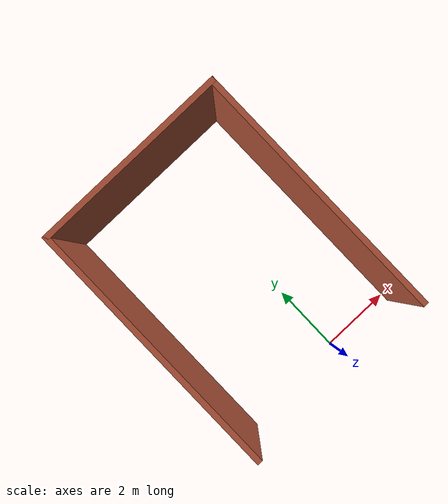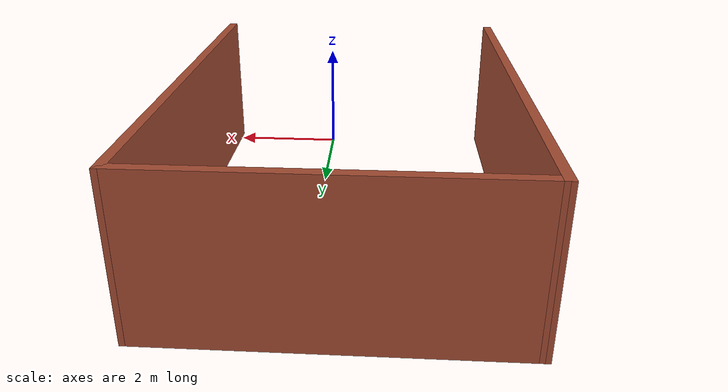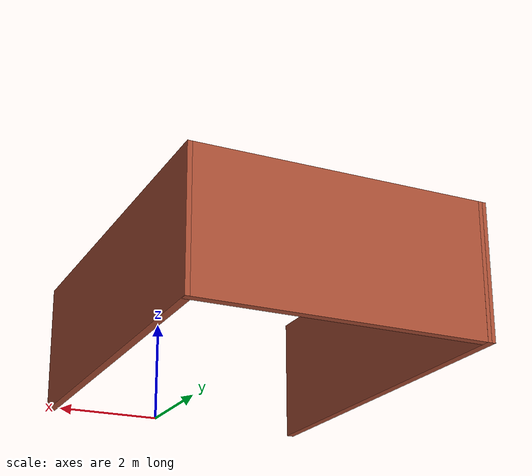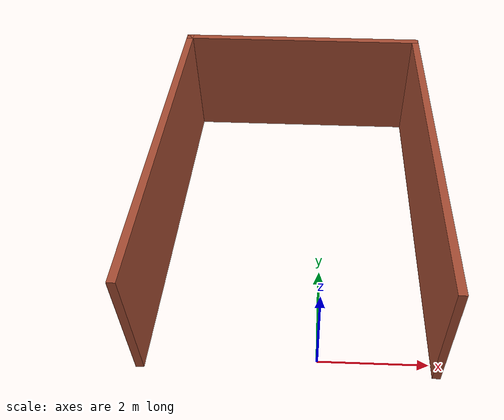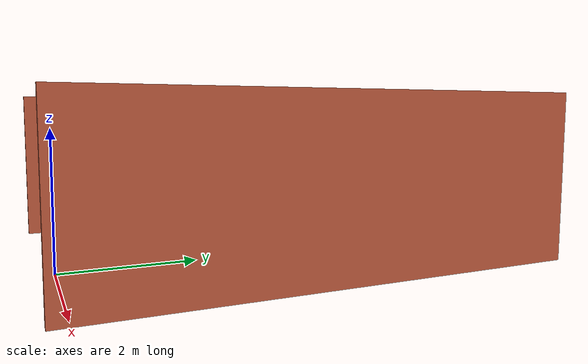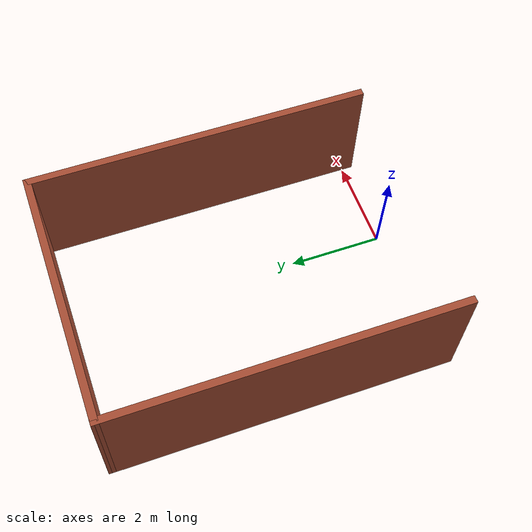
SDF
<?xml version='1.0'?>
<sdf version='1.7'>
  <model name='brick_walls2'>
    <pose>-0.535071 3.38507 0 0 -0 0</pose>
    <link name='Wall_12'>
      <collision name='Wall_12_Collision'>
        <geometry>
          <box>
            <size>7.25 0.15 2.5</size>
          </box>
        </geometry>
        <pose>0 0 1.25 0 -0 0</pose>
      </collision>
      <visual name='Wall_12_Visual'>
        <pose>0 0 1.25 0 -0 0</pose>
        <geometry>
          <box>
            <size>7.25 0.15 2.5</size>
          </box>
        </geometry>
        <material>
          <script>
            <uri>file://media/materials/scripts/gazebo.material</uri>
            <name>Gazebo/Bricks</name>
          </script>
          <ambient>1 1 1 1</ambient>
        </material>
        <meta>
          <layer>0</layer>
        </meta>
      </visual>
      <pose>-2.64493 0.004929 0 0 -0 -1.5708</pose>
    </link>
    <link name='Wall_8'>
      <collision name='Wall_8_Collision'>
        <geometry>
          <box>
            <size>5.43001 0.15 2.5</size>
          </box>
        </geometry>
        <pose>0 0 1.25 0 -0 0</pose>
      </collision>
      <visual name='Wall_8_Visual'>
        <pose>0 0 1.25 0 -0 0</pose>
        <geometry>
          <box>
            <size>5.43001 0.15 2.5</size>
          </box>
        </geometry>
        <material>
          <script>
            <uri>file://media/materials/scripts/gazebo.material</uri>
            <name>Gazebo/Bricks</name>
          </script>
          <ambient>1 1 1 1</ambient>
        </material>
        <meta>
          <layer>0</layer>
        </meta>
      </visual>
      <pose>-0.004929 3.54993 0 0 -0 -0.001894</pose>
    </link>
    <link name='Wall_9'>
      <collision name='Wall_9_Collision'>
        <geometry>
          <box>
            <size>7.25 0.15 2.5</size>
          </box>
        </geometry>
        <pose>0 0 1.25 0 -0 0</pose>
      </collision>
      <visual name='Wall_9_Visual'>
        <pose>0 0 1.25 0 -0 0</pose>
        <geometry>
          <box>
            <size>7.25 0.15 2.5</size>
          </box>
        </geometry>
        <material>
          <script>
            <uri>file://media/materials/scripts/gazebo.material</uri>
            <name>Gazebo/Bricks</name>
          </script>
          <ambient>1 1 1 1</ambient>
        </material>
        <meta>
          <layer>0</layer>
        </meta>
      </visual>
      <pose>2.64507 -0.005071 0 0 -0 -1.5708</pose>
    </link>
    <static>1</static>
  </model>
</sdf>
